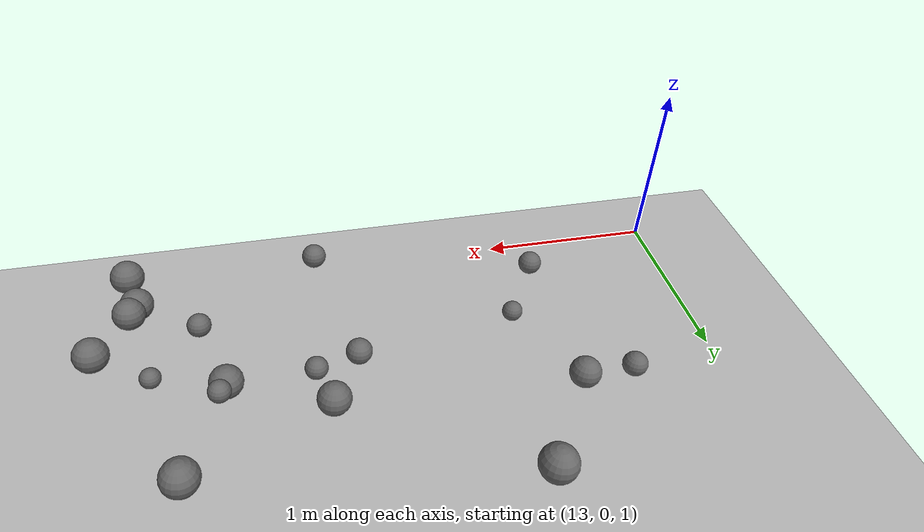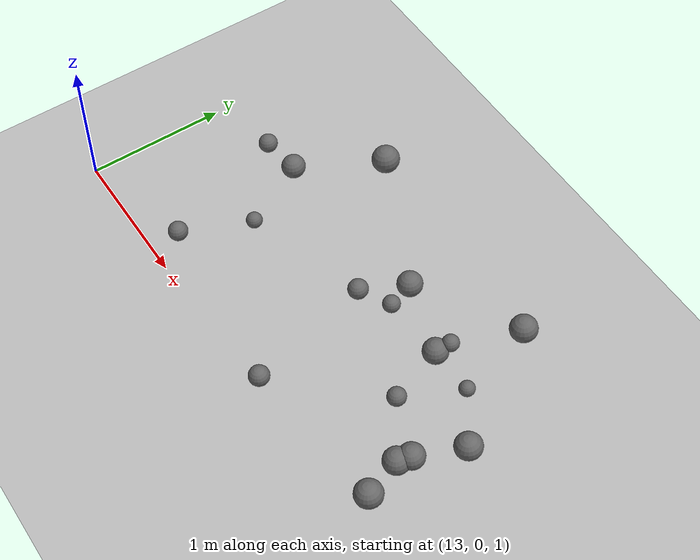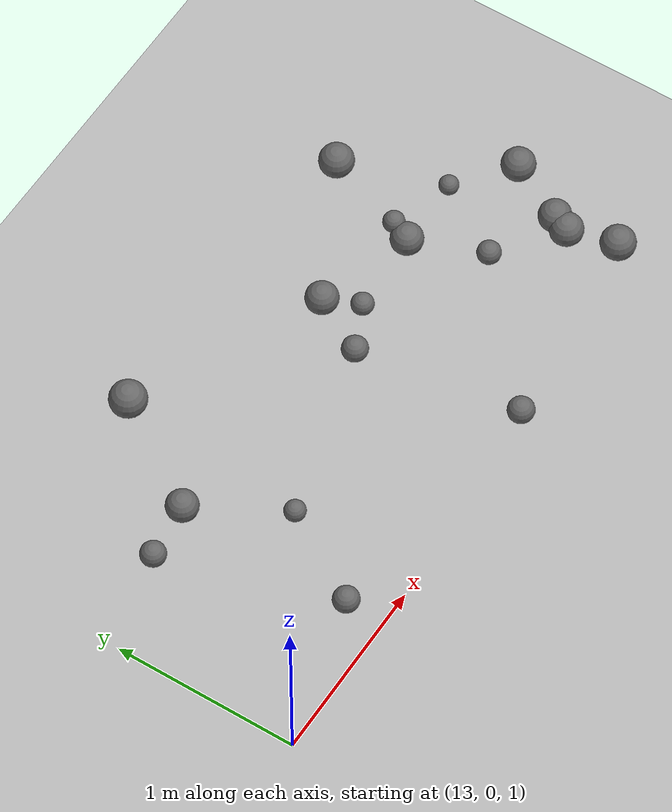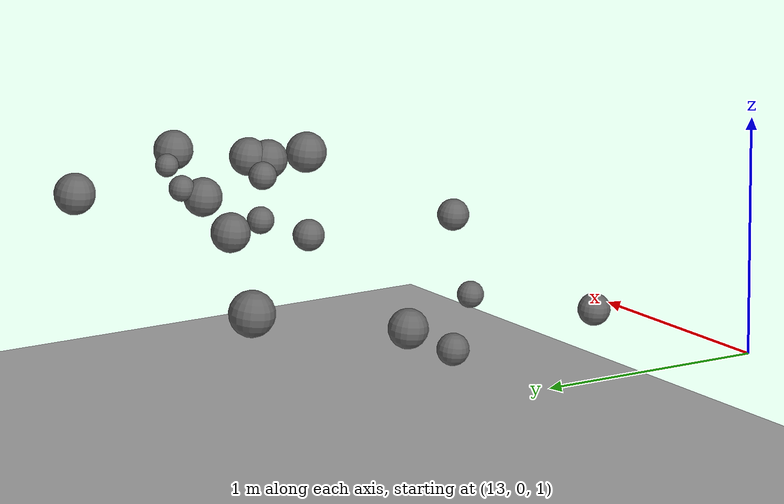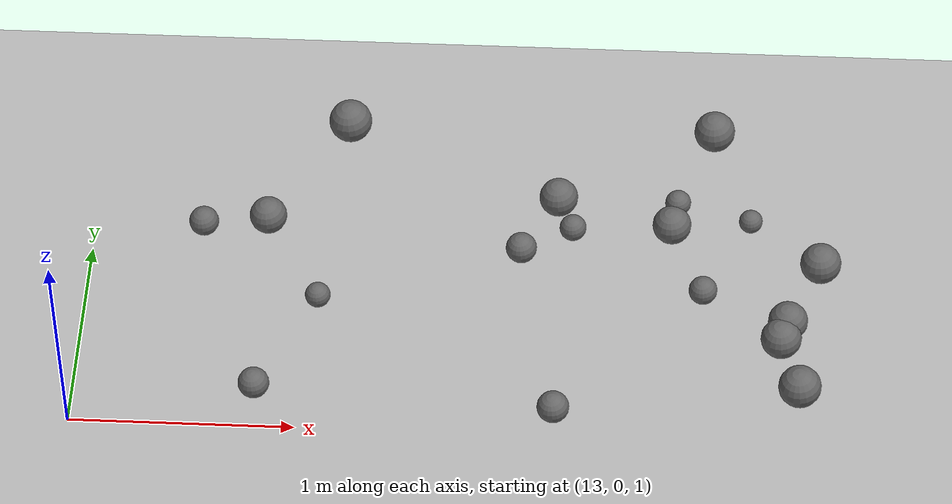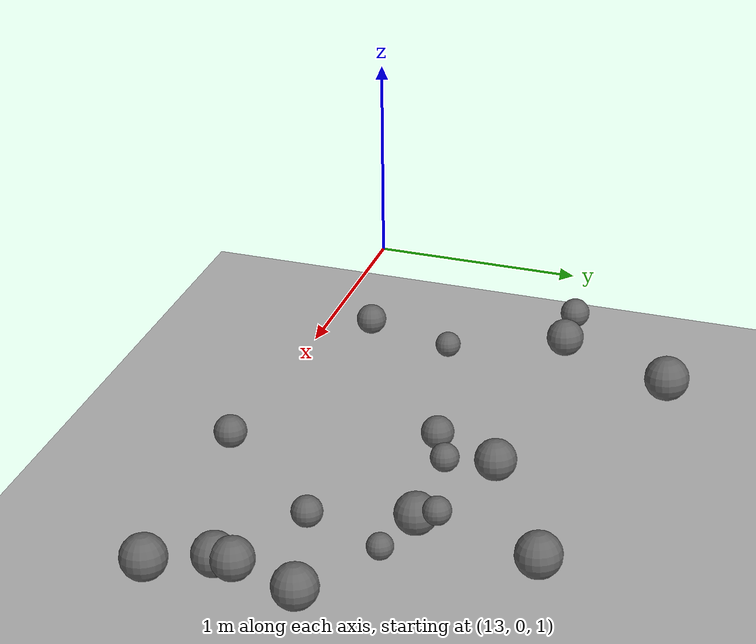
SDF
<sdf version="1.8">
 <world name="extreme_disturbance_parkour">
  <model name="ground_plane">
   <static>true</static>
   <link name="link">
    <collision name="collision">
     <geometry><plane><normal>0 0 1</normal><size>100 100</size></plane></geometry>
     <surface><friction><ode><mu>1.5</mu><mu2>1.5</mu2></ode></friction></surface>
    </collision>
    <visual name="visual">
     <geometry><plane><normal>0 0 1</normal><size>100 100</size></plane></geometry>
     <material><ambient>0.7 0.7 0.7 1</ambient><diffuse>0.7 0.7 0.7 1</diffuse></material>
    </visual>
   </link>
  </model>
  <model name="stone_134">
   <static>true</static>
   <pose>15.7790 0.6329 1.2844 0.0700 -0.1000 0.0000</pose>
   <link name="link">
    <collision name="collision">
     <geometry><sphere><radius>0.0636</radius></sphere></geometry>
     <surface><friction><ode><mu>100.0</mu><mu2>100.0</mu2></ode></friction></surface>
    </collision>
    <visual name="visual">
     <geometry><sphere><radius>0.0636</radius></sphere></geometry>
     <material><ambient>0.3 0.3 0.3 1</ambient><diffuse>0.4 0.4 0.4 1</diffuse></material>
    </visual>
   </link>
  </model>
  <model name="stone_153">
   <static>true</static>
   <pose>16.1536 0.4759 1.2792 0.0700 -0.1000 0.0000</pose>
   <link name="link">
    <collision name="collision">
     <geometry><sphere><radius>0.0878</radius></sphere></geometry>
     <surface><friction><ode><mu>100.0</mu><mu2>100.0</mu2></ode></friction></surface>
    </collision>
    <visual name="visual">
     <geometry><sphere><radius>0.0878</radius></sphere></geometry>
     <material><ambient>0.3 0.3 0.3 1</ambient><diffuse>0.4 0.4 0.4 1</diffuse></material>
    </visual>
   </link>
  </model>
  <model name="stone_154">
   <static>true</static>
   <pose>16.2024 0.1336 1.2460 0.0700 -0.1000 0.0000</pose>
   <link name="link">
    <collision name="collision">
     <geometry><sphere><radius>0.0941</radius></sphere></geometry>
     <surface><friction><ode><mu>100.0</mu><mu2>100.0</mu2></ode></friction></surface>
    </collision>
    <visual name="visual">
     <geometry><sphere><radius>0.0941</radius></sphere></geometry>
     <material><ambient>0.3 0.3 0.3 1</ambient><diffuse>0.4 0.4 0.4 1</diffuse></material>
    </visual>
   </link>
  </model>
  <model name="stone_155">
   <static>true</static>
   <pose>15.1252 1.2043 1.2363 0.0700 -0.1000 0.0000</pose>
   <link name="link">
    <collision name="collision">
     <geometry><sphere><radius>0.0877</radius></sphere></geometry>
     <surface><friction><ode><mu>100.0</mu><mu2>100.0</mu2></ode></friction></surface>
    </collision>
    <visual name="visual">
     <geometry><sphere><radius>0.0877</radius></sphere></geometry>
     <material><ambient>0.3 0.3 0.3 1</ambient><diffuse>0.4 0.4 0.4 1</diffuse></material>
    </visual>
   </link>
  </model>
  <model name="stone_156">
   <static>true</static>
   <pose>14.0591 0.6726 1.1174 0.0700 -0.1000 0.0000</pose>
   <link name="link">
    <collision name="collision">
     <geometry><sphere><radius>0.0573</radius></sphere></geometry>
     <surface><friction><ode><mu>100.0</mu><mu2>100.0</mu2></ode></friction></surface>
    </collision>
    <visual name="visual">
     <geometry><sphere><radius>0.0573</radius></sphere></geometry>
     <material><ambient>0.3 0.3 0.3 1</ambient><diffuse>0.4 0.4 0.4 1</diffuse></material>
    </visual>
   </link>
  </model>
  <model name="stone_160">
   <static>true</static>
   <pose>13.8044 0.2127 1.0428 0.0700 -0.1000 0.0000</pose>
   <link name="link">
    <collision name="collision">
     <geometry><sphere><radius>0.0699</radius></sphere></geometry>
     <surface><friction><ode><mu>100.0</mu><mu2>100.0</mu2></ode></friction></surface>
    </collision>
    <visual name="visual">
     <geometry><sphere><radius>0.0699</radius></sphere></geometry>
     <material><ambient>0.3 0.3 0.3 1</ambient><diffuse>0.4 0.4 0.4 1</diffuse></material>
    </visual>
   </link>
  </model>
  <model name="stone_167">
   <static>true</static>
   <pose>15.6401 1.0303 1.2674 0.0700 -0.1000 0.0000</pose>
   <link name="link">
    <collision name="collision">
     <geometry><sphere><radius>0.0873</radius></sphere></geometry>
     <surface><friction><ode><mu>100.0</mu><mu2>100.0</mu2></ode></friction></surface>
    </collision>
    <visual name="visual">
     <geometry><sphere><radius>0.0873</radius></sphere></geometry>
     <material><ambient>0.3 0.3 0.3 1</ambient><diffuse>0.4 0.4 0.4 1</diffuse></material>
    </visual>
   </link>
  </model>
  <model name="stone_179">
   <static>true</static>
   <pose>13.7973 1.1601 1.0975 0.0700 -0.1000 0.0000</pose>
   <link name="link">
    <collision name="collision">
     <geometry><sphere><radius>0.0855</radius></sphere></geometry>
     <surface><friction><ode><mu>100.0</mu><mu2>100.0</mu2></ode></friction></surface>
    </collision>
    <visual name="visual">
     <geometry><sphere><radius>0.0855</radius></sphere></geometry>
     <material><ambient>0.3 0.3 0.3 1</ambient><diffuse>0.4 0.4 0.4 1</diffuse></material>
    </visual>
   </link>
  </model>
  <model name="stone_180">
   <static>true</static>
   <pose>16.3009 0.7834 1.3203 0.0700 -0.1000 0.0000</pose>
   <link name="link">
    <collision name="collision">
     <geometry><sphere><radius>0.0910</radius></sphere></geometry>
     <surface><friction><ode><mu>100.0</mu><mu2>100.0</mu2></ode></friction></surface>
    </collision>
    <visual name="visual">
     <geometry><sphere><radius>0.0910</radius></sphere></geometry>
     <material><ambient>0.3 0.3 0.3 1</ambient><diffuse>0.4 0.4 0.4 1</diffuse></material>
    </visual>
   </link>
  </model>
  <model name="stone_191">
   <static>true</static>
   <pose>13.5025 1.1341 1.0716 0.0700 -0.1000 0.0000</pose>
   <link name="link">
    <collision name="collision">
     <geometry><sphere><radius>0.0681</radius></sphere></geometry>
     <surface><friction><ode><mu>100.0</mu><mu2>100.0</mu2></ode></friction></surface>
    </collision>
    <visual name="visual">
     <geometry><sphere><radius>0.0681</radius></sphere></geometry>
     <material><ambient>0.3 0.3 0.3 1</ambient><diffuse>0.4 0.4 0.4 1</diffuse></material>
    </visual>
   </link>
  </model>
  <model name="stone_199">
   <static>true</static>
   <pose>15.6652 1.1240 1.3138 0.0700 -0.1000 0.0000</pose>
   <link name="link">
    <collision name="collision">
     <geometry><sphere><radius>0.0581</radius></sphere></geometry>
     <surface><friction><ode><mu>100.0</mu><mu2>100.0</mu2></ode></friction></surface>
    </collision>
    <visual name="visual">
     <geometry><sphere><radius>0.0581</radius></sphere></geometry>
     <material><ambient>0.3 0.3 0.3 1</ambient><diffuse>0.4 0.4 0.4 1</diffuse></material>
    </visual>
   </link>
  </model>
  <model name="stone_206">
   <static>true</static>
   <pose>15.8311 1.5721 1.3144 0.0700 -0.1000 0.0000</pose>
   <link name="link">
    <collision name="collision">
     <geometry><sphere><radius>0.0931</radius></sphere></geometry>
     <surface><friction><ode><mu>100.0</mu><mu2>100.0</mu2></ode></friction></surface>
    </collision>
    <visual name="visual">
     <geometry><sphere><radius>0.0931</radius></sphere></geometry>
     <material><ambient>0.3 0.3 0.3 1</ambient><diffuse>0.4 0.4 0.4 1</diffuse></material>
    </visual>
   </link>
  </model>
  <model name="stone_209">
   <static>true</static>
   <pose>15.9906 1.0036 1.3381 0.0700 -0.1000 0.0000</pose>
   <link name="link">
    <collision name="collision">
     <geometry><sphere><radius>0.0528</radius></sphere></geometry>
     <surface><friction><ode><mu>100.0</mu><mu2>100.0</mu2></ode></friction></surface>
    </collision>
    <visual name="visual">
     <geometry><sphere><radius>0.0528</radius></sphere></geometry>
     <material><ambient>0.3 0.3 0.3 1</ambient><diffuse>0.4 0.4 0.4 1</diffuse></material>
    </visual>
   </link>
  </model>
  <model name="stone_214">
   <static>true</static>
   <pose>16.1238 0.3895 1.2618 0.0700 -0.1000 0.0000</pose>
   <link name="link">
    <collision name="collision">
     <geometry><sphere><radius>0.0903</radius></sphere></geometry>
     <surface><friction><ode><mu>100.0</mu><mu2>100.0</mu2></ode></friction></surface>
    </collision>
    <visual name="visual">
     <geometry><sphere><radius>0.0903</radius></sphere></geometry>
     <material><ambient>0.3 0.3 0.3 1</ambient><diffuse>0.4 0.4 0.4 1</diffuse></material>
    </visual>
   </link>
  </model>
  <model name="stone_220">
   <static>true</static>
   <pose>15.1322 0.0414 1.1594 0.0700 -0.1000 0.0000</pose>
   <link name="link">
    <collision name="collision">
     <geometry><sphere><radius>0.0712</radius></sphere></geometry>
     <surface><friction><ode><mu>100.0</mu><mu2>100.0</mu2></ode></friction></surface>
    </collision>
    <visual name="visual">
     <geometry><sphere><radius>0.0712</radius></sphere></geometry>
     <material><ambient>0.3 0.3 0.3 1</ambient><diffuse>0.4 0.4 0.4 1</diffuse></material>
    </visual>
   </link>
  </model>
  <model name="stone_225">
   <static>true</static>
   <pose>14.9649 0.9066 1.2183 0.0700 -0.1000 0.0000</pose>
   <link name="link">
    <collision name="collision">
     <geometry><sphere><radius>0.0699</radius></sphere></geometry>
     <surface><friction><ode><mu>100.0</mu><mu2>100.0</mu2></ode></friction></surface>
    </collision>
    <visual name="visual">
     <geometry><sphere><radius>0.0699</radius></sphere></geometry>
     <material><ambient>0.3 0.3 0.3 1</ambient><diffuse>0.4 0.4 0.4 1</diffuse></material>
    </visual>
   </link>
  </model>
  <model name="stone_227">
   <static>true</static>
   <pose>15.1942 1.0087 1.2512 0.0700 -0.1000 0.0000</pose>
   <link name="link">
    <collision name="collision">
     <geometry><sphere><radius>0.0603</radius></sphere></geometry>
     <surface><friction><ode><mu>100.0</mu><mu2>100.0</mu2></ode></friction></surface>
    </collision>
    <visual name="visual">
     <geometry><sphere><radius>0.0603</radius></sphere></geometry>
     <material><ambient>0.3 0.3 0.3 1</ambient><diffuse>0.4 0.4 0.4 1</diffuse></material>
    </visual>
   </link>
  </model>
  <model name="stone_235">
   <static>true</static>
   <pose>14.1414 1.7075 1.1636 0.0700 -0.1000 0.0000</pose>
   <link name="link">
    <collision name="collision">
     <geometry><sphere><radius>0.0996</radius></sphere></geometry>
     <surface><friction><ode><mu>100.0</mu><mu2>100.0</mu2></ode></friction></surface>
    </collision>
    <visual name="visual">
     <geometry><sphere><radius>0.0996</radius></sphere></geometry>
     <material><ambient>0.3 0.3 0.3 1</ambient><diffuse>0.4 0.4 0.4 1</diffuse></material>
    </visual>
   </link>
  </model>
 </world>
</sdf>
